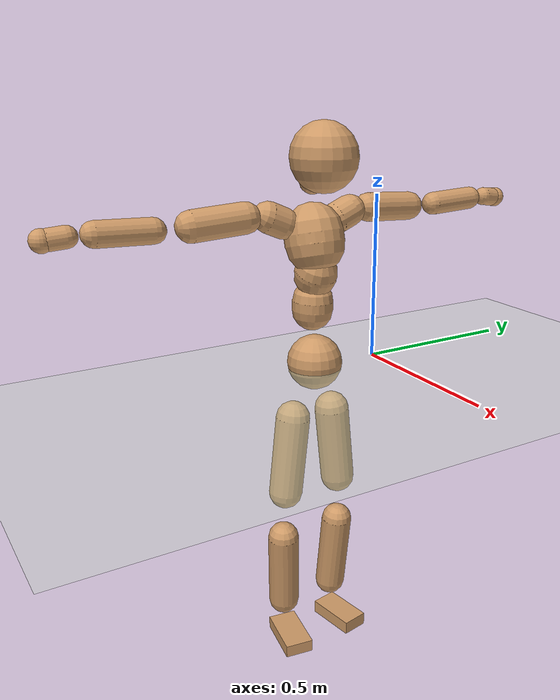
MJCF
<mujoco model="humanoid">
  <compiler coordinate="local" angle="radian"/>
  <default>
    <joint damping="0.0" armature="0.01" stiffness="0.0" limited="true"/>
    <geom conaffinity="1" condim="3" contype="7" margin="0.001" rgba="0.8 0.6 .4 1"/>
  </default>
  <asset>
    <texture type="skybox" builtin="gradient" rgb1=".4 .5 .6" rgb2="0 0 0" width="100" height="100"/>
    <texture builtin="flat" height="1278" mark="cross" markrgb="1 1 1" name="texgeom" random="0.01" rgb1="0.8 0.6 0.4" rgb2="0.8 0.6 0.4" type="cube" width="127"/>
    <texture builtin="checker" height="100" name="texplane" rgb1="0 0 0" rgb2="0.8 0.8 0.8" type="2d" width="100"/>
    <material name="MatPlane" reflectance="0.5" shininess="1" specular="1" texrepeat="60 60" texture="texplane"/>
    <material name="geom" texture="texgeom" texuniform="true"/>
  </asset>
  <worldbody>
    <light cutoff="100" diffuse="1 1 1" dir="-0 0 -1.3" directional="true" exponent="1" pos="0 0 1.3" specular=".1 .1 .1"/>
    <geom conaffinity="1" condim="3" name="floor" pos="0 0 0" rgba="0.8 0.9 0.8 1" size="100 100 .2" type="plane" material="MatPlane"/>
    <body name="Pelvis" pos="-0.0008 -0.2157 0.0146">
      <freejoint name="Pelvis"/>
      <geom type="sphere" contype="1" conaffinity="1" density="500" size="0.0848" pos="0.0000 0.0000 0.0000" name="Pelvis"/>
      <body name="L_Hip" pos="-0.0163 0.0654 -0.0927">
        <joint name="L_Hip_x" type="hinge" pos="0 0 0" axis="1 0 0" stiffness="800" damping="80" armature="0.02" range="-180.0000 180.0000"/>
        <joint name="L_Hip_y" type="hinge" pos="0 0 0" axis="0 1 0" stiffness="800" damping="80" armature="0.02" range="-180.0000 180.0000"/>
        <joint name="L_Hip_z" type="hinge" pos="0 0 0" axis="0 0 1" stiffness="800" damping="80" armature="0.02" range="-180.0000 180.0000"/>
        <geom type="capsule" contype="1" conaffinity="1" density="500" fromto="0.0002 0.0084 -0.0833 0.0009 0.0335 -0.3331" size="0.0547" name="L_Hip"/>
        <body name="L_Knee" pos="0.0011 0.0419 -0.4163">
          <joint name="L_Knee_x" type="hinge" pos="0 0 0" axis="1 0 0" stiffness="800" damping="80" armature="0.02" range="-180.0000 180.0000"/>
          <joint name="L_Knee_y" type="hinge" pos="0 0 0" axis="0 1 0" stiffness="800" damping="80" armature="0.02" range="-180.0000 180.0000"/>
          <joint name="L_Knee_z" type="hinge" pos="0 0 0" axis="0 0 1" stiffness="800" damping="80" armature="0.02" range="-180.0000 180.0000"/>
          <geom type="capsule" contype="1" conaffinity="1" density="500" fromto="-0.0086 -0.0028 -0.0883 -0.0345 -0.0111 -0.3532" size="0.0503" name="L_Knee"/>
          <body name="L_Ankle" pos="-0.0431 -0.0139 -0.4415">
            <joint name="L_Ankle_x" type="hinge" pos="0 0 0" axis="1 0 0" stiffness="800" damping="80" armature="0.02" range="-180.0000 180.0000"/>
            <joint name="L_Ankle_y" type="hinge" pos="0 0 0" axis="0 1 0" stiffness="800" damping="80" armature="0.02" range="-180.0000 180.0000"/>
            <joint name="L_Ankle_z" type="hinge" pos="0 0 0" axis="0 0 1" stiffness="800" damping="80" armature="0.02" range="-180.0000 180.0000"/>
            <geom type="box" contype="1" conaffinity="1" density="500" pos="0.0612 0.0107 -0.0306" size="0.0838 0.0434 0.0223" quat="0.9963 0.0000 0.0000 0.0864" name="L_Ankle"/>
            <body name="L_Toe" pos="0.1224 0.0214 -0.0613">
              <joint name="L_Toe_x" type="hinge" pos="0 0 0" axis="1 0 0" stiffness="500" damping="50" armature="0.02" range="-180.0000 180.0000"/>
              <joint name="L_Toe_y" type="hinge" pos="0 0 0" axis="0 1 0" stiffness="500" damping="50" armature="0.02" range="-180.0000 180.0000"/>
              <joint name="L_Toe_z" type="hinge" pos="0 0 0" axis="0 0 1" stiffness="500" damping="50" armature="0.02" range="-180.0000 180.0000"/>
              <geom type="box" contype="1" conaffinity="1" density="500" pos="0.0000 0.0000 0.0305" size="0.0009 0.0022 0.0011" quat="0.9957 0.0000 0.0000 0.0928" name="L_Toe"/>
            </body>
          </body>
        </body>
      </body>
      <body name="R_Hip" pos="-0.0111 -0.0624 -0.0913">
        <joint name="R_Hip_x" type="hinge" pos="0 0 0" axis="1 0 0" stiffness="800" damping="80" armature="0.02" range="-180.0000 180.0000"/>
        <joint name="R_Hip_y" type="hinge" pos="0 0 0" axis="0 1 0" stiffness="800" damping="80" armature="0.02" range="-180.0000 180.0000"/>
        <joint name="R_Hip_z" type="hinge" pos="0 0 0" axis="0 0 1" stiffness="800" damping="80" armature="0.02" range="-180.0000 180.0000"/>
        <geom type="capsule" contype="1" conaffinity="1" density="500" fromto="-0.0004 -0.0097 -0.0851 -0.0015 -0.0387 -0.3404" size="0.0538" name="R_Hip"/>
        <body name="R_Knee" pos="-0.0019 -0.0484 -0.4256">
          <joint name="R_Knee_x" type="hinge" pos="0 0 0" axis="1 0 0" stiffness="800" damping="80" armature="0.02" range="-180.0000 180.0000"/>
          <joint name="R_Knee_y" type="hinge" pos="0 0 0" axis="0 1 0" stiffness="800" damping="80" armature="0.02" range="-180.0000 180.0000"/>
          <joint name="R_Knee_z" type="hinge" pos="0 0 0" axis="0 0 1" stiffness="800" damping="80" armature="0.02" range="-180.0000 180.0000"/>
          <geom type="capsule" contype="1" conaffinity="1" density="500" fromto="-0.0080 0.0037 -0.0884 -0.0320 0.0146 -0.3536" size="0.0508" name="R_Knee"/>
          <body name="R_Ankle" pos="-0.04 0.0183 -0.442">
            <joint name="R_Ankle_x" type="hinge" pos="0 0 0" axis="1 0 0" stiffness="800" damping="80" armature="0.02" range="-180.0000 180.0000"/>
            <joint name="R_Ankle_y" type="hinge" pos="0 0 0" axis="0 1 0" stiffness="800" damping="80" armature="0.02" range="-180.0000 180.0000"/>
            <joint name="R_Ankle_z" type="hinge" pos="0 0 0" axis="0 0 1" stiffness="800" damping="80" armature="0.02" range="-180.0000 180.0000"/>
            <geom type="box" contype="1" conaffinity="1" density="500" pos="0.0629 -0.0097 -0.0260" size="0.0871 0.0466 0.0211" quat="0.9971 0.0000 0.0000 -0.0764" name="R_Ankle"/>
            <body name="R_Toe" pos="0.1258 -0.0194 -0.052">
              <joint name="R_Toe_x" type="hinge" pos="0 0 0" axis="1 0 0" stiffness="500" damping="50" armature="0.02" range="-180.0000 180.0000"/>
              <joint name="R_Toe_y" type="hinge" pos="0 0 0" axis="0 1 0" stiffness="500" damping="50" armature="0.02" range="-180.0000 180.0000"/>
              <joint name="R_Toe_z" type="hinge" pos="0 0 0" axis="0 0 1" stiffness="500" damping="50" armature="0.02" range="-180.0000 180.0000"/>
              <geom type="box" contype="1" conaffinity="1" density="500" pos="0.0000 0.0000 0.0286" size="0.0008 0.0022 0.0012" quat="0.9977 0.0000 0.0000 -0.0675" name="R_Toe"/>
            </body>
          </body>
        </body>
      </body>
      <body name="Torso" pos="-0.0131 -0.0028 0.106">
        <joint name="Torso_x" type="hinge" pos="0 0 0" axis="1 0 0" stiffness="1000" damping="100" armature="0.02" range="-180.0000 180.0000"/>
        <joint name="Torso_y" type="hinge" pos="0 0 0" axis="0 1 0" stiffness="1000" damping="100" armature="0.02" range="-180.0000 180.0000"/>
        <joint name="Torso_z" type="hinge" pos="0 0 0" axis="0 0 1" stiffness="1000" damping="100" armature="0.02" range="-180.0000 180.0000"/>
        <geom type="capsule" contype="1" conaffinity="1" density="500" fromto="0.0017 0.0027 0.0843 0.0011 0.0018 0.0562" size="0.0618" name="Torso"/>
        <body name="Spine" pos="0.0028 0.0045 0.1405">
          <joint name="Spine_x" type="hinge" pos="0 0 0" axis="1 0 0" stiffness="1000" damping="100" armature="0.02" range="-180.0000 180.0000"/>
          <joint name="Spine_y" type="hinge" pos="0 0 0" axis="0 1 0" stiffness="1000" damping="100" armature="0.02" range="-180.0000 180.0000"/>
          <joint name="Spine_z" type="hinge" pos="0 0 0" axis="0 0 1" stiffness="1000" damping="100" armature="0.02" range="-180.0000 180.0000"/>
          <geom type="capsule" contype="1" conaffinity="1" density="500" fromto="0.0141 0.0007 0.0318 0.0094 0.0005 0.0212" size="0.064" name="Spine"/>
          <body name="Chest" pos="0.0234 0.0012 0.053">
            <joint name="Chest_x" type="hinge" pos="0 0 0" axis="1 0 0" stiffness="1000" damping="100" armature="0.02" range="-180.0000 180.0000"/>
            <joint name="Chest_y" type="hinge" pos="0 0 0" axis="0 1 0" stiffness="1000" damping="100" armature="0.02" range="-180.0000 180.0000"/>
            <joint name="Chest_z" type="hinge" pos="0 0 0" axis="0 0 1" stiffness="1000" damping="100" armature="0.02" range="-180.0000 180.0000"/>
            <geom type="capsule" contype="1" conaffinity="1" density="500" fromto="-0.0229 -0.0016 0.0911 -0.0153 -0.0011 0.0607" size="0.088" name="Chest"/>
            <body name="Neck" pos="-0.0373 -0.0052 0.2223">
              <joint name="Neck_x" type="hinge" pos="0 0 0" axis="1 0 0" stiffness="500" damping="50" armature="0.02" range="-180.0000 180.0000"/>
              <joint name="Neck_y" type="hinge" pos="0 0 0" axis="0 1 0" stiffness="500" damping="50" armature="0.02" range="-180.0000 180.0000"/>
              <joint name="Neck_z" type="hinge" pos="0 0 0" axis="0 0 1" stiffness="500" damping="50" armature="0.02" range="-180.0000 180.0000"/>
              <geom type="capsule" contype="1" conaffinity="1" density="500" fromto="0.0125 0.0016 0.0163 0.0500 0.0065 0.0653" size="0.0396" name="Neck"/>
              <body name="Head" pos="0.0625 0.0081 0.0816">
                <joint name="Head_x" type="hinge" pos="0 0 0" axis="1 0 0" stiffness="500" damping="50" armature="0.02" range="-180.0000 180.0000"/>
                <joint name="Head_y" type="hinge" pos="0 0 0" axis="0 1 0" stiffness="500" damping="50" armature="0.02" range="-180.0000 180.0000"/>
                <joint name="Head_z" type="hinge" pos="0 0 0" axis="0 0 1" stiffness="500" damping="50" armature="0.02" range="-180.0000 180.0000"/>
                <geom type="sphere" contype="1" conaffinity="1" density="500" size="0.0978" pos="0.0000 0.0000 0.0000" name="Head"/>
              </body>
            </body>
            <body name="L_Thorax" pos="-0.0362 0.0697 0.1176">
              <joint name="L_Thorax_x" type="hinge" pos="0 0 0" axis="1 0 0" stiffness="500" damping="50" armature="0.02" range="-180.0000 180.0000"/>
              <joint name="L_Thorax_y" type="hinge" pos="0 0 0" axis="0 1 0" stiffness="500" damping="50" armature="0.02" range="-180.0000 180.0000"/>
              <joint name="L_Thorax_z" type="hinge" pos="0 0 0" axis="0 0 1" stiffness="500" damping="50" armature="0.02" range="-180.0000 180.0000"/>
              <geom type="capsule" contype="1" conaffinity="1" density="500" fromto="-0.0007 0.0157 0.0063 -0.0028 0.0629 0.0250" size="0.0462" name="L_Thorax"/>
              <body name="L_Shoulder" pos="-0.0035 0.0787 0.0313">
                <joint name="L_Shoulder_x" type="hinge" pos="0 0 0" axis="1 0 0" stiffness="500" damping="50" armature="0.02" range="-720.0000 720.0000"/>
                <joint name="L_Shoulder_y" type="hinge" pos="0 0 0" axis="0 1 0" stiffness="500" damping="50" armature="0.02" range="-720.0000 720.0000"/>
                <joint name="L_Shoulder_z" type="hinge" pos="0 0 0" axis="0 0 1" stiffness="500" damping="50" armature="0.02" range="-720.0000 720.0000"/>
                <geom type="capsule" contype="1" conaffinity="1" density="500" fromto="-0.0049 0.0543 -0.0034 -0.0196 0.2171 -0.0137" size="0.0426" name="L_Shoulder"/>
                <body name="L_Elbow" pos="-0.0246 0.2713 -0.0171">
                  <joint name="L_Elbow_x" type="hinge" pos="0 0 0" axis="1 0 0" stiffness="500" damping="50" armature="0.02" range="-720.0000 720.0000"/>
                  <joint name="L_Elbow_y" type="hinge" pos="0 0 0" axis="0 1 0" stiffness="500" damping="50" armature="0.02" range="-720.0000 720.0000"/>
                  <joint name="L_Elbow_z" type="hinge" pos="0 0 0" axis="0 0 1" stiffness="500" damping="50" armature="0.02" range="-720.0000 720.0000"/>
                  <geom type="capsule" contype="1" conaffinity="1" density="500" fromto="-0.0006 0.0500 0.0020 -0.0025 0.2000 0.0082" size="0.035" name="L_Elbow"/>
                  <body name="L_Wrist" pos="-0.0031 0.25 0.0102">
                    <joint name="L_Wrist_x" type="hinge" pos="0 0 0" axis="1 0 0" stiffness="300" damping="30" armature="0.02" range="-180.0000 180.0000"/>
                    <joint name="L_Wrist_y" type="hinge" pos="0 0 0" axis="0 1 0" stiffness="300" damping="30" armature="0.02" range="-180.0000 180.0000"/>
                    <joint name="L_Wrist_z" type="hinge" pos="0 0 0" axis="0 0 1" stiffness="300" damping="30" armature="0.02" range="-180.0000 180.0000"/>
                    <geom type="capsule" contype="1" conaffinity="1" density="500" fromto="-0.0026 0.0153 -0.0019 -0.0104 0.0611 -0.0076" size="0.0284" name="L_Wrist"/>
                    <body name="L_Hand" pos="-0.013 0.0763 -0.0095">
                      <joint name="L_Hand_x" type="hinge" pos="0 0 0" axis="1 0 0" stiffness="300" damping="30" armature="0.02" range="-180.0000 180.0000"/>
                      <joint name="L_Hand_y" type="hinge" pos="0 0 0" axis="0 1 0" stiffness="300" damping="30" armature="0.02" range="-180.0000 180.0000"/>
                      <joint name="L_Hand_z" type="hinge" pos="0 0 0" axis="0 0 1" stiffness="300" damping="30" armature="0.02" range="-180.0000 180.0000"/>
                      <geom type="sphere" contype="1" conaffinity="1" density="500" size="0.0307" pos="0.0000 0.0000 0.0000" name="L_Hand"/>
                    </body>
                  </body>
                </body>
              </body>
            </body>
            <body name="R_Thorax" pos="-0.0409 -0.0727 0.1158">
              <joint name="R_Thorax_x" type="hinge" pos="0 0 0" axis="1 0 0" stiffness="500" damping="50" armature="0.02" range="-180.0000 180.0000"/>
              <joint name="R_Thorax_y" type="hinge" pos="0 0 0" axis="0 1 0" stiffness="500" damping="50" armature="0.02" range="-180.0000 180.0000"/>
              <joint name="R_Thorax_z" type="hinge" pos="0 0 0" axis="0 0 1" stiffness="500" damping="50" armature="0.02" range="-180.0000 180.0000"/>
              <geom type="capsule" contype="1" conaffinity="1" density="500" fromto="-0.0011 -0.0162 0.0069 -0.0044 -0.0648 0.0277" size="0.045" name="R_Thorax"/>
              <body name="R_Shoulder" pos="-0.0055 -0.081 0.0347">
                <joint name="R_Shoulder_x" type="hinge" pos="0 0 0" axis="1 0 0" stiffness="500" damping="50" armature="0.02" range="-720.0000 720.0000"/>
                <joint name="R_Shoulder_y" type="hinge" pos="0 0 0" axis="0 1 0" stiffness="500" damping="50" armature="0.02" range="-720.0000 720.0000"/>
                <joint name="R_Shoulder_z" type="hinge" pos="0 0 0" axis="0 0 1" stiffness="500" damping="50" armature="0.02" range="-720.0000 720.0000"/>
                <geom type="capsule" contype="1" conaffinity="1" density="500" fromto="-0.0038 -0.0523 -0.0037 -0.0152 -0.2094 -0.0148" size="0.0449" name="R_Shoulder"/>
                <body name="R_Elbow" pos="-0.019 -0.2617 -0.0185">
                  <joint name="R_Elbow_x" type="hinge" pos="0 0 0" axis="1 0 0" stiffness="500" damping="50" armature="0.02" range="-720.0000 720.0000"/>
                  <joint name="R_Elbow_y" type="hinge" pos="0 0 0" axis="0 1 0" stiffness="500" damping="50" armature="0.02" range="-720.0000 720.0000"/>
                  <joint name="R_Elbow_z" type="hinge" pos="0 0 0" axis="0 0 1" stiffness="500" damping="50" armature="0.02" range="-720.0000 720.0000"/>
                  <geom type="capsule" contype="1" conaffinity="1" density="500" fromto="-0.0018 -0.0522 0.0015 -0.0073 -0.2087 0.0059" size="0.0357" name="R_Elbow"/>
                  <body name="R_Wrist" pos="-0.0091 -0.2609 0.0073">
                    <joint name="R_Wrist_x" type="hinge" pos="0 0 0" axis="1 0 0" stiffness="300" damping="30" armature="0.02" range="-180.0000 180.0000"/>
                    <joint name="R_Wrist_y" type="hinge" pos="0 0 0" axis="0 1 0" stiffness="300" damping="30" armature="0.02" range="-180.0000 180.0000"/>
                    <joint name="R_Wrist_z" type="hinge" pos="0 0 0" axis="0 0 1" stiffness="300" damping="30" armature="0.02" range="-180.0000 180.0000"/>
                    <geom type="capsule" contype="1" conaffinity="1" density="500" fromto="-0.0020 -0.0155 -0.0014 -0.0078 -0.0622 -0.0056" size="0.0293" name="R_Wrist"/>
                    <body name="R_Hand" pos="-0.0098 -0.0777 -0.0071">
                      <joint name="R_Hand_x" type="hinge" pos="0 0 0" axis="1 0 0" stiffness="300" damping="30" armature="0.02" range="-180.0000 180.0000"/>
                      <joint name="R_Hand_y" type="hinge" pos="0 0 0" axis="0 1 0" stiffness="300" damping="30" armature="0.02" range="-180.0000 180.0000"/>
                      <joint name="R_Hand_z" type="hinge" pos="0 0 0" axis="0 0 1" stiffness="300" damping="30" armature="0.02" range="-180.0000 180.0000"/>
                      <geom type="sphere" contype="1" conaffinity="1" density="500" size="0.0311" pos="0.0000 0.0000 0.0000" name="R_Hand"/>
                    </body>
                  </body>
                </body>
              </body>
            </body>
          </body>
        </body>
      </body>
    </body>
  </worldbody>
  <actuator>
    <motor name="L_Hip_x" joint="L_Hip_x" gear="500"/>
    <motor name="L_Hip_y" joint="L_Hip_y" gear="500"/>
    <motor name="L_Hip_z" joint="L_Hip_z" gear="500"/>
    <motor name="L_Knee_x" joint="L_Knee_x" gear="500"/>
    <motor name="L_Knee_y" joint="L_Knee_y" gear="500"/>
    <motor name="L_Knee_z" joint="L_Knee_z" gear="500"/>
    <motor name="L_Ankle_x" joint="L_Ankle_x" gear="500"/>
    <motor name="L_Ankle_y" joint="L_Ankle_y" gear="500"/>
    <motor name="L_Ankle_z" joint="L_Ankle_z" gear="500"/>
    <motor name="L_Toe_x" joint="L_Toe_x" gear="500"/>
    <motor name="L_Toe_y" joint="L_Toe_y" gear="500"/>
    <motor name="L_Toe_z" joint="L_Toe_z" gear="500"/>
    <motor name="R_Hip_x" joint="R_Hip_x" gear="500"/>
    <motor name="R_Hip_y" joint="R_Hip_y" gear="500"/>
    <motor name="R_Hip_z" joint="R_Hip_z" gear="500"/>
    <motor name="R_Knee_x" joint="R_Knee_x" gear="500"/>
    <motor name="R_Knee_y" joint="R_Knee_y" gear="500"/>
    <motor name="R_Knee_z" joint="R_Knee_z" gear="500"/>
    <motor name="R_Ankle_x" joint="R_Ankle_x" gear="500"/>
    <motor name="R_Ankle_y" joint="R_Ankle_y" gear="500"/>
    <motor name="R_Ankle_z" joint="R_Ankle_z" gear="500"/>
    <motor name="R_Toe_x" joint="R_Toe_x" gear="500"/>
    <motor name="R_Toe_y" joint="R_Toe_y" gear="500"/>
    <motor name="R_Toe_z" joint="R_Toe_z" gear="500"/>
    <motor name="Torso_x" joint="Torso_x" gear="500"/>
    <motor name="Torso_y" joint="Torso_y" gear="500"/>
    <motor name="Torso_z" joint="Torso_z" gear="500"/>
    <motor name="Spine_x" joint="Spine_x" gear="500"/>
    <motor name="Spine_y" joint="Spine_y" gear="500"/>
    <motor name="Spine_z" joint="Spine_z" gear="500"/>
    <motor name="Chest_x" joint="Chest_x" gear="500"/>
    <motor name="Chest_y" joint="Chest_y" gear="500"/>
    <motor name="Chest_z" joint="Chest_z" gear="500"/>
    <motor name="Neck_x" joint="Neck_x" gear="500"/>
    <motor name="Neck_y" joint="Neck_y" gear="500"/>
    <motor name="Neck_z" joint="Neck_z" gear="500"/>
    <motor name="Head_x" joint="Head_x" gear="500"/>
    <motor name="Head_y" joint="Head_y" gear="500"/>
    <motor name="Head_z" joint="Head_z" gear="500"/>
    <motor name="L_Thorax_x" joint="L_Thorax_x" gear="500"/>
    <motor name="L_Thorax_y" joint="L_Thorax_y" gear="500"/>
    <motor name="L_Thorax_z" joint="L_Thorax_z" gear="500"/>
    <motor name="L_Shoulder_x" joint="L_Shoulder_x" gear="500"/>
    <motor name="L_Shoulder_y" joint="L_Shoulder_y" gear="500"/>
    <motor name="L_Shoulder_z" joint="L_Shoulder_z" gear="500"/>
    <motor name="L_Elbow_x" joint="L_Elbow_x" gear="500"/>
    <motor name="L_Elbow_y" joint="L_Elbow_y" gear="500"/>
    <motor name="L_Elbow_z" joint="L_Elbow_z" gear="500"/>
    <motor name="L_Wrist_x" joint="L_Wrist_x" gear="500"/>
    <motor name="L_Wrist_y" joint="L_Wrist_y" gear="500"/>
    <motor name="L_Wrist_z" joint="L_Wrist_z" gear="500"/>
    <motor name="L_Hand_x" joint="L_Hand_x" gear="500"/>
    <motor name="L_Hand_y" joint="L_Hand_y" gear="500"/>
    <motor name="L_Hand_z" joint="L_Hand_z" gear="500"/>
    <motor name="R_Thorax_x" joint="R_Thorax_x" gear="500"/>
    <motor name="R_Thorax_y" joint="R_Thorax_y" gear="500"/>
    <motor name="R_Thorax_z" joint="R_Thorax_z" gear="500"/>
    <motor name="R_Shoulder_x" joint="R_Shoulder_x" gear="500"/>
    <motor name="R_Shoulder_y" joint="R_Shoulder_y" gear="500"/>
    <motor name="R_Shoulder_z" joint="R_Shoulder_z" gear="500"/>
    <motor name="R_Elbow_x" joint="R_Elbow_x" gear="500"/>
    <motor name="R_Elbow_y" joint="R_Elbow_y" gear="500"/>
    <motor name="R_Elbow_z" joint="R_Elbow_z" gear="500"/>
    <motor name="R_Wrist_x" joint="R_Wrist_x" gear="500"/>
    <motor name="R_Wrist_y" joint="R_Wrist_y" gear="500"/>
    <motor name="R_Wrist_z" joint="R_Wrist_z" gear="500"/>
    <motor name="R_Hand_x" joint="R_Hand_x" gear="500"/>
    <motor name="R_Hand_y" joint="R_Hand_y" gear="500"/>
    <motor name="R_Hand_z" joint="R_Hand_z" gear="500"/>
  </actuator>
  <contact>
    <exclude body1="Torso" body2="Chest"/>
    <exclude body1="Head" body2="Chest"/>
    <exclude body1="R_Knee" body2="R_Toe"/>
    <exclude body1="R_Knee" body2="L_Ankle"/>
    <exclude body1="R_Knee" body2="L_Toe"/>
    <exclude body1="L_Knee" body2="L_Toe"/>
    <exclude body1="L_Knee" body2="R_Ankle"/>
    <exclude body1="L_Knee" body2="R_Toe"/>
    <exclude body1="L_Shoulder" body2="Chest"/>
    <exclude body1="R_Shoulder" body2="Chest"/>
  </contact>
  <sensor/>
  <size njmax="700" nconmax="700"/>
</mujoco>
